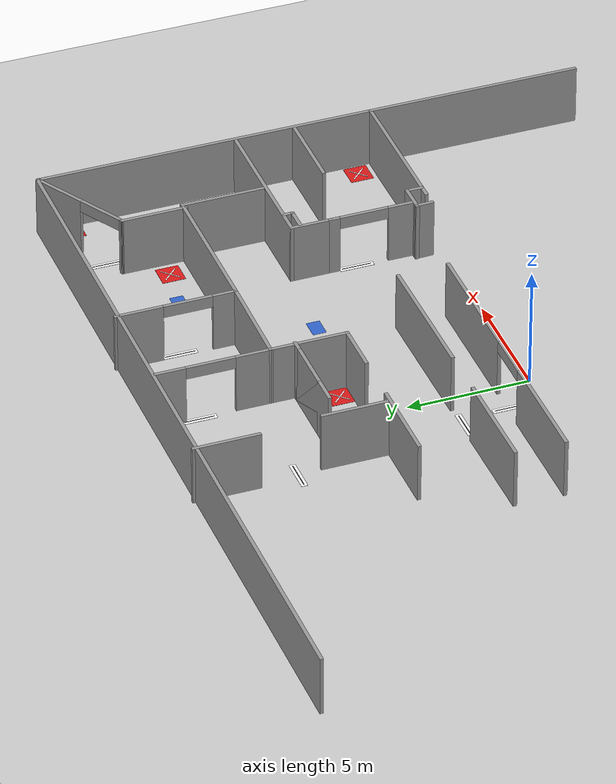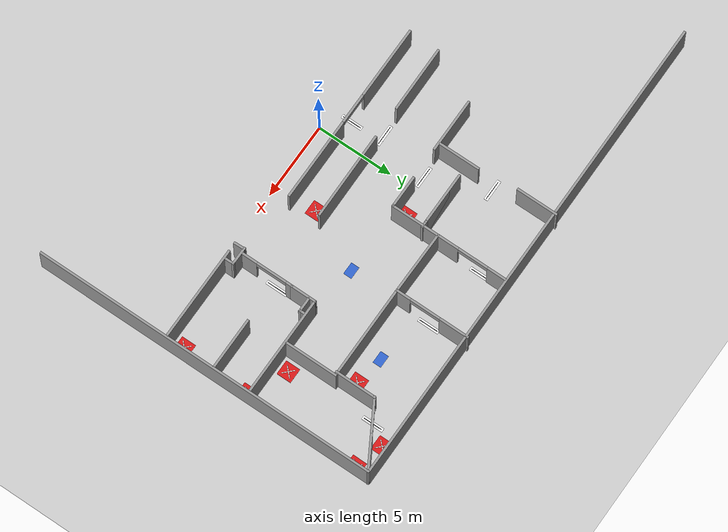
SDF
<sdf version="1.7">
 <world name="default">
  <model name="ground_plane">
   <static>1</static>
   <link name="link">
    <collision name="collision">
     <geometry><plane><normal>0 0 1</normal><size>100 100</size></plane></geometry>
     <surface><friction><ode><mu>100</mu><mu2>50</mu2></ode></friction></surface>
    </collision>
    <visual name="visual">
     <cast_shadows>0</cast_shadows>
     <geometry><plane><normal>0 0 1</normal><size>100 100</size></plane></geometry>
     <material>
      <script><uri>file://media/materials/scripts/gazebo.material</uri><name>Gazebo/Grey</name></script>
     </material>
    </visual>
   </link>
  </model>
  <model name="Untitled">
   <pose>-0.105598 -0.5029 0 0 -0 0</pose>
   <link name="Wall_0">
    <collision name="Wall_0_Collision">
     <geometry><box><size>32 0.15 2.5</size></box></geometry>
     <pose>0 0 1.25 0 -0 0</pose>
    </collision>
    <visual name="Wall_0_Visual">
     <pose>0 0 1.25 0 -0 0</pose>
     <geometry><box><size>32 0.15 2.5</size></box></geometry>
     <material>
      <script><uri>file://media/materials/scripts/gazebo.material</uri><name>Gazebo/Grey</name></script>
      <ambient>1 1 1 1</ambient>
     </material>
     <meta><layer>0</layer></meta>
    </visual>
    <pose>-0.015819 14.9519 0 0 -0 0</pose>
   </link>
   <link name="Wall_103">
    <collision name="Wall_103_Collision">
     <geometry><box><size>0.773696 0.15 2.5</size></box></geometry>
     <pose>0 0 1.25 0 -0 0</pose>
    </collision>
    <visual name="Wall_103_Visual">
     <pose>0 0 1.25 0 -0 0</pose>
     <geometry><box><size>0.773696 0.15 2.5</size></box></geometry>
     <material>
      <script><uri>file://media/materials/scripts/gazebo.material</uri><name>Gazebo/Grey</name></script>
      <ambient>1 1 1 1</ambient>
     </material>
     <meta><layer>0</layer></meta>
    </visual>
    <pose>9.2103 1.33527 0 0 -0 1.6081</pose>
   </link>
   <link name="Wall_104">
    <collision name="Wall_104_Collision">
     <geometry><box><size>1.25 0.15 2.5</size></box></geometry>
     <pose>0 0 1.25 0 -0 0</pose>
    </collision>
    <visual name="Wall_104_Visual">
     <pose>0 0 1.25 0 -0 0</pose>
     <geometry><box><size>1.25 0.15 2.5</size></box></geometry>
     <material>
      <script><uri>file://media/materials/scripts/gazebo.material</uri><name>Gazebo/Grey</name></script>
      <ambient>1 1 1 1</ambient>
     </material>
     <meta><layer>0</layer></meta>
    </visual>
    <pose>9.72541 1.6469 0 0 -0 0</pose>
   </link>
   <link name="Wall_107">
    <collision name="Wall_107_Collision">
     <geometry><box><size>0.75 0.15 2.5</size></box></geometry>
     <pose>0 0 1.25 0 -0 0</pose>
    </collision>
    <visual name="Wall_107_Visual">
     <pose>0 0 1.25 0 -0 0</pose>
     <geometry><box><size>0.75 0.15 2.5</size></box></geometry>
     <material>
      <script><uri>file://media/materials/scripts/gazebo.material</uri><name>Gazebo/Grey</name></script>
      <ambient>1 1 1 1</ambient>
     </material>
     <meta><layer>0</layer></meta>
    </visual>
    <pose>10.2754 1.3469 0 0 -0 -1.5708</pose>
   </link>
   <link name="Wall_109">
    <pose>9.47135 3.47041 0 0 -0 1.5708</pose>
    <visual name="Wall_109_Visual_0">
     <pose>-1.23605 0 1.25 0 -0 0</pose>
     <geometry><box><size>1.0279 0.15 2.5</size></box></geometry>
     <material>
      <script><uri>file://media/materials/scripts/gazebo.material</uri><name>Gazebo/Grey</name></script>
      <ambient>1 1 1 1</ambient>
     </material>
     <meta><layer>0</layer></meta>
    </visual>
    <collision name="Wall_109_Collision_0">
     <geometry><box><size>1.0279 0.15 2.5</size></box></geometry>
     <pose>-1.23605 0 1.25 0 -0 0</pose>
    </collision>
    <visual name="Wall_109_Visual_1">
     <pose>1.51395 0 1.25 0 -0 0</pose>
     <geometry><box><size>0.472105 0.15 2.5</size></box></geometry>
     <material>
      <script><uri>file://media/materials/scripts/gazebo.material</uri><name>Gazebo/Grey</name></script>
      <ambient>1 1 1 1</ambient>
     </material>
     <meta><layer>0</layer></meta>
    </visual>
    <collision name="Wall_109_Collision_1">
     <geometry><box><size>0.472105 0.15 2.5</size></box></geometry>
     <pose>1.51395 0 1.25 0 -0 0</pose>
    </collision>
    <visual name="Wall_109_Visual_2">
     <pose>0.277895 0 2.25 0 -0 0</pose>
     <geometry><box><size>2 0.15 0.5</size></box></geometry>
     <material>
      <script><uri>file://media/materials/scripts/gazebo.material</uri><name>Gazebo/Grey</name></script>
      <ambient>1 1 1 1</ambient>
     </material>
     <meta><layer>0</layer></meta>
    </visual>
    <collision name="Wall_109_Collision_2">
     <geometry><box><size>2 0.15 0.5</size></box></geometry>
     <pose>0.277895 0 2.25 0 -0 0</pose>
    </collision>
   </link>
   <link name="Wall_110">
    <collision name="Wall_110_Collision">
     <geometry><box><size>1.75 0.15 2.5</size></box></geometry>
     <pose>0 0 1.25 0 -0 0</pose>
    </collision>
    <visual name="Wall_110_Visual">
     <pose>0 0 1.25 0 -0 0</pose>
     <geometry><box><size>1.75 0.15 2.5</size></box></geometry>
     <material>
      <script><uri>file://media/materials/scripts/gazebo.material</uri><name>Gazebo/Grey</name></script>
      <ambient>1 1 1 1</ambient>
     </material>
     <meta><layer>0</layer></meta>
    </visual>
    <pose>9.47135 5.94541 0 0 -0 1.5708</pose>
   </link>
   <link name="Wall_111">
    <collision name="Wall_111_Collision">
     <geometry><box><size>6.5 0.15 2.5</size></box></geometry>
     <pose>0 0 1.25 0 -0 0</pose>
    </collision>
    <visual name="Wall_111_Visual">
     <pose>0 0 1.25 0 -0 0</pose>
     <geometry><box><size>6.5 0.15 2.5</size></box></geometry>
     <material>
      <script><uri>file://media/materials/scripts/gazebo.material</uri><name>Gazebo/Grey</name></script>
      <ambient>1 1 1 1</ambient>
     </material>
     <meta><layer>0</layer></meta>
    </visual>
    <pose>12.6463 6.74541 0 0 -0 0</pose>
   </link>
   <link name="Wall_113">
    <collision name="Wall_113_Collision">
     <geometry><box><size>3.5 0.15 2.5</size></box></geometry>
     <pose>0 0 1.25 0 -0 0</pose>
    </collision>
    <visual name="Wall_113_Visual">
     <pose>0 0 1.25 0 -0 0</pose>
     <geometry><box><size>3.5 0.15 2.5</size></box></geometry>
     <material>
      <script><uri>file://media/materials/scripts/gazebo.material</uri><name>Gazebo/Grey</name></script>
      <ambient>1 1 1 1</ambient>
     </material>
     <meta><layer>0</layer></meta>
    </visual>
    <pose>14.2653 4.27721 0 0 -0 3.14159</pose>
   </link>
   <link name="Wall_115">
    <collision name="Wall_115_Collision">
     <geometry><box><size>0.5 0.15 2.5</size></box></geometry>
     <pose>0 0 1.25 0 -0 0</pose>
    </collision>
    <visual name="Wall_115_Visual">
     <pose>0 0 1.25 0 -0 0</pose>
     <geometry><box><size>0.5 0.15 2.5</size></box></geometry>
     <material>
      <script><uri>file://media/materials/scripts/gazebo.material</uri><name>Gazebo/Grey</name></script>
      <ambient>1 1 1 1</ambient>
     </material>
     <meta><layer>0</layer></meta>
    </visual>
    <pose>10.4071 6.54333 0 0 -0 -1.5708</pose>
   </link>
   <link name="Wall_116">
    <collision name="Wall_116_Collision">
     <geometry><box><size>1 0.15 2.5</size></box></geometry>
     <pose>0 0 1.25 0 -0 0</pose>
    </collision>
    <visual name="Wall_116_Visual">
     <pose>0 0 1.25 0 -0 0</pose>
     <geometry><box><size>1 0.15 2.5</size></box></geometry>
     <material>
      <script><uri>file://media/materials/scripts/gazebo.material</uri><name>Gazebo/Grey</name></script>
      <ambient>1 1 1 1</ambient>
     </material>
     <meta><layer>0</layer></meta>
    </visual>
    <pose>9.98211 6.36833 0 0 -0 3.14159</pose>
   </link>
   <link name="Wall_118">
    <collision name="Wall_118_Collision">
     <geometry><box><size>3.5 0.15 2.5</size></box></geometry>
     <pose>0 0 1.25 0 -0 0</pose>
    </collision>
    <visual name="Wall_118_Visual">
     <pose>0 0 1.25 0 -0 0</pose>
     <geometry><box><size>3.5 0.15 2.5</size></box></geometry>
     <material>
      <script><uri>file://media/materials/scripts/gazebo.material</uri><name>Gazebo/Grey</name></script>
      <ambient>1 1 1 1</ambient>
     </material>
     <meta><layer>0</layer></meta>
    </visual>
    <pose>12.3892 8.52156 0 0 -0 1.5708</pose>
   </link>
   <link name="Wall_119">
    <collision name="Wall_119_Collision">
     <geometry><box><size>6.25 0.15 2.5</size></box></geometry>
     <pose>0 0 1.25 0 -0 0</pose>
    </collision>
    <visual name="Wall_119_Visual">
     <pose>0 0 1.25 0 -0 0</pose>
     <geometry><box><size>6.25 0.15 2.5</size></box></geometry>
     <material>
      <script><uri>file://media/materials/scripts/gazebo.material</uri><name>Gazebo/Grey</name></script>
      <ambient>1 1 1 1</ambient>
     </material>
     <meta><layer>0</layer></meta>
    </visual>
    <pose>9.33915 10.1966 0 0 -0 3.14159</pose>
   </link>
   <link name="Wall_121">
    <pose>6.28915 12.6216 0 0 -0 1.5708</pose>
    <visual name="Wall_121_Visual_0">
     <pose>-1.99093 0 1.25 0 -0 0</pose>
     <geometry><box><size>1.01815 0.15 2.5</size></box></geometry>
     <material>
      <script><uri>file://media/materials/scripts/gazebo.material</uri><name>Gazebo/Grey</name></script>
      <ambient>1 1 1 1</ambient>
     </material>
     <meta><layer>0</layer></meta>
    </visual>
    <collision name="Wall_121_Collision_0">
     <geometry><box><size>1.01815 0.15 2.5</size></box></geometry>
     <pose>-1.99093 0 1.25 0 -0 0</pose>
    </collision>
    <visual name="Wall_121_Visual_1">
     <pose>1.50907 0 1.25 0 -0 0</pose>
     <geometry><box><size>1.98185 0.15 2.5</size></box></geometry>
     <material>
      <script><uri>file://media/materials/scripts/gazebo.material</uri><name>Gazebo/Grey</name></script>
      <ambient>1 1 1 1</ambient>
     </material>
     <meta><layer>0</layer></meta>
    </visual>
    <collision name="Wall_121_Collision_1">
     <geometry><box><size>1.98185 0.15 2.5</size></box></geometry>
     <pose>1.50907 0 1.25 0 -0 0</pose>
    </collision>
    <visual name="Wall_121_Visual_2">
     <pose>-0.481853 0 2.25 0 -0 0</pose>
     <geometry><box><size>2 0.15 0.5</size></box></geometry>
     <material>
      <script><uri>file://media/materials/scripts/gazebo.material</uri><name>Gazebo/Grey</name></script>
      <ambient>1 1 1 1</ambient>
     </material>
     <meta><layer>0</layer></meta>
    </visual>
    <collision name="Wall_121_Collision_2">
     <geometry><box><size>2 0.15 0.5</size></box></geometry>
     <pose>-0.481853 0 2.25 0 -0 0</pose>
    </collision>
   </link>
   <link name="Wall_123">
    <pose>14.0857 13.8282 0 0 -0 -2.61799</pose>
    <visual name="Wall_123_Visual_0">
     <pose>-1.09346 0 1.25 0 -0 0</pose>
     <geometry><box><size>2.31309 0.15 2.5</size></box></geometry>
     <material>
      <script><uri>file://media/materials/scripts/gazebo.material</uri><name>Gazebo/Grey</name></script>
      <ambient>1 1 1 1</ambient>
     </material>
     <meta><layer>0</layer></meta>
    </visual>
    <collision name="Wall_123_Collision_0">
     <geometry><box><size>2.31309 0.15 2.5</size></box></geometry>
     <pose>-1.09346 0 1.25 0 -0 0</pose>
    </collision>
    <visual name="Wall_123_Visual_1">
     <pose>2.15654 0 1.25 0 -0 0</pose>
     <geometry><box><size>0.186911 0.15 2.5</size></box></geometry>
     <material>
      <script><uri>file://media/materials/scripts/gazebo.material</uri><name>Gazebo/Grey</name></script>
      <ambient>1 1 1 1</ambient>
     </material>
     <meta><layer>0</layer></meta>
    </visual>
    <collision name="Wall_123_Collision_1">
     <geometry><box><size>0.186911 0.15 2.5</size></box></geometry>
     <pose>2.15654 0 1.25 0 -0 0</pose>
    </collision>
    <visual name="Wall_123_Visual_2">
     <pose>1.06309 0 2.25 0 -0 0</pose>
     <geometry><box><size>2 0.15 0.5</size></box></geometry>
     <material>
      <script><uri>file://media/materials/scripts/gazebo.material</uri><name>Gazebo/Grey</name></script>
      <ambient>1 1 1 1</ambient>
     </material>
     <meta><layer>0</layer></meta>
    </visual>
    <collision name="Wall_123_Collision_2">
     <geometry><box><size>2 0.15 0.5</size></box></geometry>
     <pose>1.06309 0 2.25 0 -0 0</pose>
    </collision>
   </link>
   <link name="Wall_125">
    <collision name="Wall_125_Collision">
     <geometry><box><size>2.75 0.15 2.5</size></box></geometry>
     <pose>0 0 1.25 0 -0 0</pose>
    </collision>
    <visual name="Wall_125_Visual">
     <pose>0 0 1.25 0 -0 0</pose>
     <geometry><box><size>2.75 0.15 2.5</size></box></geometry>
     <material>
      <script><uri>file://media/materials/scripts/gazebo.material</uri><name>Gazebo/Grey</name></script>
      <ambient>1 1 1 1</ambient>
     </material>
     <meta><layer>0</layer></meta>
    </visual>
    <pose>12.2021 11.4407 0 0 -0 -1.5708</pose>
   </link>
   <link name="Wall_134">
    <collision name="Wall_134_Collision_0">
     <geometry><box><size>3.574498 0.15 2.5</size></box></geometry>
     <pose>-2.087751 0 1.25 0 -0 0</pose>
    </collision>
    <collision name="Wall_134_Collision_1">
     <geometry><box><size>2.175502 0.15 2.5</size></box></geometry>
     <pose>2.787249 0 1.25 0 -0 0</pose>
    </collision>
    <visual name="Wall_134_Visual_0">
     <pose>-2.087751 0 1.25 0 -0 0</pose>
     <geometry><box><size>3.574498 0.15 2.5</size></box></geometry>
     <material>
      <script><uri>file://media/materials/scripts/gazebo.material</uri><name>Gazebo/Grey</name></script>
      <ambient>1 1 1 1</ambient>
     </material>
     <meta><layer>0</layer></meta>
    </visual>
    <visual name="Wall_134_Visual_1">
     <pose>2.787249 0 1.25 0 -0 0</pose>
     <geometry><box><size>2.175502 0.15 2.5</size></box></geometry>
     <material>
      <script><uri>file://media/materials/scripts/gazebo.material</uri><name>Gazebo/Grey</name></script>
      <ambient>1 1 1 1</ambient>
     </material>
     <meta><layer>0</layer></meta>
    </visual>
    <pose>-1.5439 7.14462 0 0 -0 0</pose>
   </link>
   <link name="Wall_135">
    <collision name="Wall_135_Collision">
     <geometry><box><size>3.25 0.15 2.5</size></box></geometry>
     <pose>0 0 1.25 0 -0 0</pose>
    </collision>
    <visual name="Wall_135_Visual">
     <pose>0 0 1.25 0 -0 0</pose>
     <geometry><box><size>3.25 0.15 2.5</size></box></geometry>
     <material>
      <script><uri>file://media/materials/scripts/gazebo.material</uri><name>Gazebo/Grey</name></script>
      <ambient>1 1 1 1</ambient>
     </material>
     <meta><layer>0</layer></meta>
    </visual>
    <pose>2.2561 8.69462 0 0 -0 1.5708</pose>
   </link>
   <link name="Wall_136">
    <collision name="Wall_136_Collision">
     <geometry><box><size>4.18334 0.15 2.5</size></box></geometry>
     <pose>0 0 1.25 0 -0 0</pose>
    </collision>
    <visual name="Wall_136_Visual">
     <pose>0 0 1.25 0 -0 0</pose>
     <geometry><box><size>4.18334 0.15 2.5</size></box></geometry>
     <material>
      <script><uri>file://media/materials/scripts/gazebo.material</uri><name>Gazebo/Grey</name></script>
      <ambient>1 1 1 1</ambient>
     </material>
     <meta><layer>0</layer></meta>
    </visual>
    <pose>4.27263 10.2206 0 0 -0 -0.011916</pose>
   </link>
   <link name="Wall_141">
    <collision name="Wall_141_Collision">
     <geometry><box><size>2.75 0.15 2.5</size></box></geometry>
     <pose>0 0 1.25 0 -0 0</pose>
    </collision>
    <visual name="Wall_141_Visual">
     <pose>0 0 1.25 0 -0 0</pose>
     <geometry><box><size>2.75 0.15 2.5</size></box></geometry>
     <material>
      <script><uri>file://media/materials/scripts/gazebo.material</uri><name>Gazebo/Grey</name></script>
      <ambient>1 1 1 1</ambient>
     </material>
     <meta><layer>0</layer></meta>
    </visual>
    <pose>-2.3552 8.55347 0 0 -0 1.5708</pose>
   </link>
   <link name="Wall_143">
    <collision name="Wall_143_Collision">
     <geometry><box><size>2.75 0.15 2.5</size></box></geometry>
     <pose>0 0 1.25 0 -0 0</pose>
    </collision>
    <visual name="Wall_143_Visual">
     <pose>0 0 1.25 0 -0 0</pose>
     <geometry><box><size>2.75 0.15 2.5</size></box></geometry>
     <material>
      <script><uri>file://media/materials/scripts/gazebo.material</uri><name>Gazebo/Grey</name></script>
      <ambient>1 1 1 1</ambient>
     </material>
     <meta><layer>0</layer></meta>
    </visual>
    <pose>-2.61835 13.7628 0 0 -0 -1.5708</pose>
   </link>
   <link name="Wall_145">
    <pose>0.299408 9.22055 0 0 -0 0</pose>
    <visual name="Wall_145_Visual_0">
     <pose>0 0 1.25 0 -0 0</pose>
     <geometry><box><size>3.5 0.15 2.5</size></box></geometry>
     <material>
      <script><uri>file://media/materials/scripts/gazebo.material</uri><name>Gazebo/Grey</name></script>
      <ambient>1 1 1 1</ambient>
     </material>
     <meta><layer>0</layer></meta>
    </visual>
    <collision name="Wall_145_Collision_0">
     <geometry><box><size>3.5 0.15 2.5</size></box></geometry>
     <pose>0 0 1.25 0 -0 0</pose>
    </collision>
    <visual name="Wall_145_Visual_1">
     <pose>0.58502 0 1.25 0 -0 0</pose>
     <geometry><box><size>2.32996 0.15 2.5</size></box></geometry>
     <material>
      <script><uri>file://media/materials/scripts/gazebo.material</uri><name>Gazebo/Grey</name></script>
      <ambient>1 1 1 1</ambient>
     </material>
     <meta><layer>0</layer></meta>
    </visual>
    <collision name="Wall_145_Collision_1">
     <geometry><box><size>2.32996 0.15 2.5</size></box></geometry>
     <pose>0.58502 0 1.25 0 -0 0</pose>
    </collision>
   </link>
   <link name="Wall_146">
    <collision name="Wall_146_Collision">
     <geometry><box><size>0.5 0.15 2.5</size></box></geometry>
     <pose>0 0 1.25 0 -0 0</pose>
    </collision>
    <visual name="Wall_146_Visual">
     <pose>0 0 1.25 0 -0 0</pose>
     <geometry><box><size>0.5 0.15 2.5</size></box></geometry>
     <material>
      <script><uri>file://media/materials/scripts/gazebo.material</uri><name>Gazebo/Grey</name></script>
      <ambient>1 1 1 1</ambient>
     </material>
     <meta><layer>0</layer></meta>
    </visual>
    <pose>2.14941 9.22055 0 0 -0 0</pose>
   </link>
   <link name="Wall_148">
    <pose>2.2561 12.5446 0 0 -0 1.5708</pose>
    <visual name="Wall_148_Visual_0">
     <pose>-1.63102 0 1.25 0 -0 0</pose>
     <geometry><box><size>1.48795 0.15 2.5</size></box></geometry>
     <material>
      <script><uri>file://media/materials/scripts/gazebo.material</uri><name>Gazebo/Grey</name></script>
      <ambient>1 1 1 1</ambient>
     </material>
     <meta><layer>0</layer></meta>
    </visual>
    <collision name="Wall_148_Collision_0">
     <geometry><box><size>1.48795 0.15 2.5</size></box></geometry>
     <pose>-1.63102 0 1.25 0 -0 0</pose>
    </collision>
    <visual name="Wall_148_Visual_1">
     <pose>1.74398 0 1.25 0 -0 0</pose>
     <geometry><box><size>1.26205 0.15 2.5</size></box></geometry>
     <material>
      <script><uri>file://media/materials/scripts/gazebo.material</uri><name>Gazebo/Grey</name></script>
      <ambient>1 1 1 1</ambient>
     </material>
     <meta><layer>0</layer></meta>
    </visual>
    <collision name="Wall_148_Collision_1">
     <geometry><box><size>1.26205 0.15 2.5</size></box></geometry>
     <pose>1.74398 0 1.25 0 -0 0</pose>
    </collision>
    <visual name="Wall_148_Visual_2">
     <pose>0.112949 0 2.25 0 -0 0</pose>
     <geometry><box><size>2 0.15 0.5</size></box></geometry>
     <material>
      <script><uri>file://media/materials/scripts/gazebo.material</uri><name>Gazebo/Grey</name></script>
      <ambient>1 1 1 1</ambient>
     </material>
     <meta><layer>0</layer></meta>
    </visual>
    <collision name="Wall_148_Collision_2">
     <geometry><box><size>2 0.15 0.5</size></box></geometry>
     <pose>0.112949 0 2.25 0 -0 0</pose>
    </collision>
   </link>
   <link name="Wall_16">
    <collision name="Wall_16_Collision_0">
     <geometry><box><size>4.371509 0.15 2.5</size></box></geometry>
     <pose>-3.889346 0 1.25 0 -0 0</pose>
    </collision>
    <collision name="Wall_16_Collision_1">
     <geometry><box><size>5.778691 0.15 2.5</size></box></geometry>
     <pose>3.185755 0 1.25 0 -0 0</pose>
    </collision>
    <visual name="Wall_16_Visual_0">
     <pose>-3.889346 0 1.25 0 -0 0</pose>
     <geometry><box><size>4.371509 0.15 2.5</size></box></geometry>
     <material>
      <script><uri>file://media/materials/scripts/gazebo.material</uri><name>Gazebo/Grey</name></script>
      <ambient>1 1 1 1</ambient>
     </material>
     <meta><layer>0</layer></meta>
    </visual>
    <visual name="Wall_16_Visual_1">
     <pose>3.185755 0 1.25 0 -0 0</pose>
     <geometry><box><size>5.778691 0.15 2.5</size></box></geometry>
     <material>
      <script><uri>file://media/materials/scripts/gazebo.material</uri><name>Gazebo/Grey</name></script>
      <ambient>1 1 1 1</ambient>
     </material>
     <meta><layer>0</layer></meta>
    </visual>
    <pose>-0.940819 3.96326 0 0 -0 0.005896</pose>
   </link>
   <link name="Wall_22">
    <pose>-0.939938 1.92283 0 0 -0 0</pose>
    <visual name="Wall_22_Visual_0">
     <pose>-3.72488 0 1.25 0 -0 0</pose>
     <geometry><box><size>4.80023 0.15 2.5</size></box></geometry>
     <material>
      <script><uri>file://media/materials/scripts/gazebo.material</uri><name>Gazebo/Grey</name></script>
      <ambient>1 1 1 1</ambient>
     </material>
     <meta><layer>0</layer></meta>
    </visual>
    <collision name="Wall_22_Collision_0">
     <geometry><box><size>4.80023 0.15 2.5</size></box></geometry>
     <pose>-3.72488 0 1.25 0 -0 0</pose>
    </collision>
    <visual name="Wall_22_Visual_1">
     <pose>3.40012 0 1.25 0 -0 0</pose>
     <geometry><box><size>5.44977 0.15 2.5</size></box></geometry>
     <material>
      <script><uri>file://media/materials/scripts/gazebo.material</uri><name>Gazebo/Grey</name></script>
      <ambient>1 1 1 1</ambient>
     </material>
     <meta><layer>0</layer></meta>
    </visual>
    <collision name="Wall_22_Collision_1">
     <geometry><box><size>5.44977 0.15 2.5</size></box></geometry>
     <pose>3.40012 0 1.25 0 -0 0</pose>
    </collision>
    <visual name="Wall_22_Visual_2">
     <pose>-0.324766 0 2.25 0 -0 0</pose>
     <geometry><box><size>2 0.15 0.5</size></box></geometry>
     <material>
      <script><uri>file://media/materials/scripts/gazebo.material</uri><name>Gazebo/Grey</name></script>
      <ambient>1 1 1 1</ambient>
     </material>
     <meta><layer>0</layer></meta>
    </visual>
    <collision name="Wall_22_Collision_2">
     <geometry><box><size>2 0.15 0.5</size></box></geometry>
     <pose>-0.324766 0 2.25 0 -0 0</pose>
    </collision>
   </link>
   <link name="Wall_92">
    <collision name="Wall_92_Collision">
     <geometry><box><size>22.75 0.15 2.5</size></box></geometry>
     <pose>0 0 1.25 0 -0 0</pose>
    </collision>
    <visual name="Wall_92_Visual">
     <pose>0 0 1.25 0 -0 0</pose>
     <geometry><box><size>22.75 0.15 2.5</size></box></geometry>
     <material>
      <script><uri>file://media/materials/scripts/gazebo.material</uri><name>Gazebo/Grey</name></script>
      <ambient>1 1 1 1</ambient>
     </material>
     <meta><layer>0</layer></meta>
    </visual>
    <pose>15.9693 3.61574 0 0 -0 1.5708</pose>
   </link>
   <link name="Wall_97">
    <collision name="Wall_97_Collision">
     <geometry><box><size>6.25 0.15 2.5</size></box></geometry>
     <pose>0 0 1.25 0 -0 0</pose>
    </collision>
    <visual name="Wall_97_Visual">
     <pose>0 0 1.25 0 -0 0</pose>
     <geometry><box><size>6.25 0.15 2.5</size></box></geometry>
     <material>
      <script><uri>file://media/materials/scripts/gazebo.material</uri><name>Gazebo/Grey</name></script>
      <ambient>1 1 1 1</ambient>
     </material>
     <meta><layer>0</layer></meta>
    </visual>
    <pose>12.8719 1.02364 0 0 -0 0</pose>
   </link>
   <static>1</static>
  </model>
  <model name="semantic_marker_door_2">
   <static>true</static>
   <pose>-2.55 10.35 0 0 0 0.0000</pose>
   <link name="link">
    <visual name="door_patch">
     <pose>0 0 0.005 0 0 0</pose>
     <geometry><box><size>1.40 0.26 0.01</size></box></geometry>
     <material><ambient>0.96 0.96 0.96 1</ambient><diffuse>0.96 0.96 0.96 1</diffuse></material>
    </visual>
    <visual name="door_center_line">
     <pose>0 0 0.011 0 0 0</pose>
     <geometry><box><size>1.22 0.03 0.005</size></box></geometry>
     <material><ambient>0.15 0.15 0.15 1</ambient><diffuse>0.15 0.15 0.15 1</diffuse></material>
    </visual>
   </link>
  </model>
  <model name="semantic_marker_door_3">
   <static>true</static>
   <pose>2.05 12.65 0 0 0 1.5708</pose>
   <link name="link">
    <visual name="door_patch">
     <pose>0 0 0.005 0 0 0</pose>
     <geometry><box><size>1.40 0.26 0.01</size></box></geometry>
     <material><ambient>0.96 0.96 0.96 1</ambient><diffuse>0.96 0.96 0.96 1</diffuse></material>
    </visual>
    <visual name="door_center_line">
     <pose>0 0 0.011 0 0 0</pose>
     <geometry><box><size>1.22 0.03 0.005</size></box></geometry>
     <material><ambient>0.15 0.15 0.15 1</ambient><diffuse>0.15 0.15 0.15 1</diffuse></material>
    </visual>
   </link>
  </model>
  <model name="semantic_marker_door_4">
   <static>true</static>
   <pose>6.25 11.95 0 0 0 1.5708</pose>
   <link name="link">
    <visual name="door_patch">
     <pose>0 0 0.005 0 0 0</pose>
     <geometry><box><size>1.40 0.26 0.01</size></box></geometry>
     <material><ambient>0.96 0.96 0.96 1</ambient><diffuse>0.96 0.96 0.96 1</diffuse></material>
    </visual>
    <visual name="door_center_line">
     <pose>0 0 0.011 0 0 0</pose>
     <geometry><box><size>1.22 0.03 0.005</size></box></geometry>
     <material><ambient>0.15 0.15 0.15 1</ambient><diffuse>0.15 0.15 0.15 1</diffuse></material>
    </visual>
   </link>
  </model>
  <model name="semantic_marker_door_5">
   <static>true</static>
   <pose>12.85 12.65 0 0 0 1.5708</pose>
   <link name="link">
    <visual name="door_patch">
     <pose>0 0 0.005 0 0 0</pose>
     <geometry><box><size>1.40 0.26 0.01</size></box></geometry>
     <material><ambient>0.96 0.96 0.96 1</ambient><diffuse>0.96 0.96 0.96 1</diffuse></material>
    </visual>
    <visual name="door_center_line">
     <pose>0 0 0.011 0 0 0</pose>
     <geometry><box><size>1.22 0.03 0.005</size></box></geometry>
     <material><ambient>0.15 0.15 0.15 1</ambient><diffuse>0.15 0.15 0.15 1</diffuse></material>
    </visual>
   </link>
  </model>
  <model name="semantic_marker_door_11">
   <static>true</static>
   <pose>-1.35 1.35 0 0 0 1.5708</pose>
   <link name="link">
    <visual name="door_patch">
     <pose>0 0 0.005 0 0 0</pose>
     <geometry><box><size>1.40 0.26 0.01</size></box></geometry>
     <material><ambient>0.96 0.96 0.96 1</ambient><diffuse>0.96 0.96 0.96 1</diffuse></material>
    </visual>
    <visual name="door_center_line">
     <pose>0 0 0.011 0 0 0</pose>
     <geometry><box><size>1.22 0.03 0.005</size></box></geometry>
     <material><ambient>0.15 0.15 0.15 1</ambient><diffuse>0.15 0.15 0.15 1</diffuse></material>
    </visual>
   </link>
  </model>
  <model name="semantic_marker_door_23">
   <static>true</static>
   <pose>9.35 3.55 0 0 0 1.5708</pose>
   <link name="link">
    <visual name="door_patch">
     <pose>0 0 0.005 0 0 0</pose>
     <geometry><box><size>1.40 0.26 0.01</size></box></geometry>
     <material><ambient>0.96 0.96 0.96 1</ambient><diffuse>0.96 0.96 0.96 1</diffuse></material>
    </visual>
    <visual name="door_center_line">
     <pose>0 0 0.011 0 0 0</pose>
     <geometry><box><size>1.22 0.03 0.005</size></box></geometry>
     <material><ambient>0.15 0.15 0.15 1</ambient><diffuse>0.15 0.15 0.15 1</diffuse></material>
    </visual>
   </link>
  </model>
  <model name="semantic_marker_door_26">
   <static>true</static>
   <pose>-1.75 3.35 0 0 0 0.0059</pose>
   <link name="link">
    <visual name="door_patch">
     <pose>0 0 0.005 0 0 0</pose>
     <geometry><box><size>1.40 0.26 0.01</size></box></geometry>
     <material><ambient>0.96 0.96 0.96 1</ambient><diffuse>0.96 0.96 0.96 1</diffuse></material>
    </visual>
    <visual name="door_center_line">
     <pose>0 0 0.011 0 0 0</pose>
     <geometry><box><size>1.22 0.03 0.005</size></box></geometry>
     <material><ambient>0.15 0.15 0.15 1</ambient><diffuse>0.15 0.15 0.15 1</diffuse></material>
    </visual>
   </link>
  </model>
  <model name="semantic_marker_door_27">
   <static>true</static>
   <pose>-0.95 6.65 0 0 0 0.0000</pose>
   <link name="link">
    <visual name="door_patch">
     <pose>0 0 0.005 0 0 0</pose>
     <geometry><box><size>1.40 0.26 0.01</size></box></geometry>
     <material><ambient>0.96 0.96 0.96 1</ambient><diffuse>0.96 0.96 0.96 1</diffuse></material>
    </visual>
    <visual name="door_center_line">
     <pose>0 0 0.011 0 0 0</pose>
     <geometry><box><size>1.22 0.03 0.005</size></box></geometry>
     <material><ambient>0.15 0.15 0.15 1</ambient><diffuse>0.15 0.15 0.15 1</diffuse></material>
    </visual>
   </link>
  </model>
  <model name="semantic_marker_dead_end_12">
   <static>true</static>
   <pose>15.25 1.25 0 0 0 0.0000</pose>
   <link name="link">
    <visual name="dead_end_patch">
     <pose>0 0 0.005 0 0 0</pose>
     <geometry><box><size>0.95 0.95 0.01</size></box></geometry>
     <material><ambient>0.85 0.10 0.10 1</ambient><diffuse>0.85 0.10 0.10 1</diffuse></material>
    </visual>
    <visual name="cross_bar_a">
     <pose>0 0 0.011 0 0 0.78</pose>
     <geometry><box><size>0.83 0.05 0.005</size></box></geometry>
     <material><ambient>0.98 0.98 0.98 1</ambient><diffuse>0.98 0.98 0.98 1</diffuse></material>
    </visual>
    <visual name="cross_bar_b">
     <pose>0 0 0.011 0 0 -0.78</pose>
     <geometry><box><size>0.83 0.05 0.005</size></box></geometry>
     <material><ambient>0.98 0.98 0.98 1</ambient><diffuse>0.98 0.98 0.98 1</diffuse></material>
    </visual>
   </link>
  </model>
  <model name="semantic_marker_dead_end_13">
   <static>true</static>
   <pose>15.45 5.75 0 0 0 0.0000</pose>
   <link name="link">
    <visual name="dead_end_patch">
     <pose>0 0 0.005 0 0 0</pose>
     <geometry><box><size>0.95 0.95 0.01</size></box></geometry>
     <material><ambient>0.85 0.10 0.10 1</ambient><diffuse>0.85 0.10 0.10 1</diffuse></material>
    </visual>
    <visual name="cross_bar_a">
     <pose>0 0 0.011 0 0 0.78</pose>
     <geometry><box><size>0.83 0.05 0.005</size></box></geometry>
     <material><ambient>0.98 0.98 0.98 1</ambient><diffuse>0.98 0.98 0.98 1</diffuse></material>
    </visual>
    <visual name="cross_bar_b">
     <pose>0 0 0.011 0 0 -0.78</pose>
     <geometry><box><size>0.83 0.05 0.005</size></box></geometry>
     <material><ambient>0.98 0.98 0.98 1</ambient><diffuse>0.98 0.98 0.98 1</diffuse></material>
    </visual>
   </link>
  </model>
  <model name="semantic_marker_dead_end_14">
   <static>true</static>
   <pose>13.05 6.95 0 0 0 0.0000</pose>
   <link name="link">
    <visual name="dead_end_patch">
     <pose>0 0 0.005 0 0 0</pose>
     <geometry><box><size>0.95 0.95 0.01</size></box></geometry>
     <material><ambient>0.85 0.10 0.10 1</ambient><diffuse>0.85 0.10 0.10 1</diffuse></material>
    </visual>
    <visual name="cross_bar_a">
     <pose>0 0 0.011 0 0 0.78</pose>
     <geometry><box><size>0.83 0.05 0.005</size></box></geometry>
     <material><ambient>0.98 0.98 0.98 1</ambient><diffuse>0.98 0.98 0.98 1</diffuse></material>
    </visual>
    <visual name="cross_bar_b">
     <pose>0 0 0.011 0 0 -0.78</pose>
     <geometry><box><size>0.83 0.05 0.005</size></box></geometry>
     <material><ambient>0.98 0.98 0.98 1</ambient><diffuse>0.98 0.98 0.98 1</diffuse></material>
    </visual>
   </link>
  </model>
  <model name="semantic_marker_dead_end_15">
   <static>true</static>
   <pose>15.45 13.25 0 0 0 0.0000</pose>
   <link name="link">
    <visual name="dead_end_patch">
     <pose>0 0 0.005 0 0 0</pose>
     <geometry><box><size>0.95 0.95 0.01</size></box></geometry>
     <material><ambient>0.85 0.10 0.10 1</ambient><diffuse>0.85 0.10 0.10 1</diffuse></material>
    </visual>
    <visual name="cross_bar_a">
     <pose>0 0 0.011 0 0 0.78</pose>
     <geometry><box><size>0.83 0.05 0.005</size></box></geometry>
     <material><ambient>0.98 0.98 0.98 1</ambient><diffuse>0.98 0.98 0.98 1</diffuse></material>
    </visual>
    <visual name="cross_bar_b">
     <pose>0 0 0.011 0 0 -0.78</pose>
     <geometry><box><size>0.83 0.05 0.005</size></box></geometry>
     <material><ambient>0.98 0.98 0.98 1</ambient><diffuse>0.98 0.98 0.98 1</diffuse></material>
    </visual>
   </link>
  </model>
  <model name="semantic_marker_dead_end_16">
   <static>true</static>
   <pose>13.65 13.85 0 0 0 0.0000</pose>
   <link name="link">
    <visual name="dead_end_patch">
     <pose>0 0 0.005 0 0 0</pose>
     <geometry><box><size>0.95 0.95 0.01</size></box></geometry>
     <material><ambient>0.85 0.10 0.10 1</ambient><diffuse>0.85 0.10 0.10 1</diffuse></material>
    </visual>
    <visual name="cross_bar_a">
     <pose>0 0 0.011 0 0 0.78</pose>
     <geometry><box><size>0.83 0.05 0.005</size></box></geometry>
     <material><ambient>0.98 0.98 0.98 1</ambient><diffuse>0.98 0.98 0.98 1</diffuse></material>
    </visual>
    <visual name="cross_bar_b">
     <pose>0 0 0.011 0 0 -0.78</pose>
     <geometry><box><size>0.83 0.05 0.005</size></box></geometry>
     <material><ambient>0.98 0.98 0.98 1</ambient><diffuse>0.98 0.98 0.98 1</diffuse></material>
    </visual>
   </link>
  </model>
  <model name="semantic_marker_dead_end_17">
   <static>true</static>
   <pose>11.35 10.55 0 0 0 0.0000</pose>
   <link name="link">
    <visual name="dead_end_patch">
     <pose>0 0 0.005 0 0 0</pose>
     <geometry><box><size>0.95 0.95 0.01</size></box></geometry>
     <material><ambient>0.85 0.10 0.10 1</ambient><diffuse>0.85 0.10 0.10 1</diffuse></material>
    </visual>
    <visual name="cross_bar_a">
     <pose>0 0 0.011 0 0 0.78</pose>
     <geometry><box><size>0.83 0.05 0.005</size></box></geometry>
     <material><ambient>0.98 0.98 0.98 1</ambient><diffuse>0.98 0.98 0.98 1</diffuse></material>
    </visual>
    <visual name="cross_bar_b">
     <pose>0 0 0.011 0 0 -0.78</pose>
     <geometry><box><size>0.83 0.05 0.005</size></box></geometry>
     <material><ambient>0.98 0.98 0.98 1</ambient><diffuse>0.98 0.98 0.98 1</diffuse></material>
    </visual>
   </link>
  </model>
  <model name="semantic_marker_dead_end_18">
   <static>true</static>
   <pose>1.55 7.15 0 0 0 0.0000</pose>
   <link name="link">
    <visual name="dead_end_patch">
     <pose>0 0 0.005 0 0 0</pose>
     <geometry><box><size>0.95 0.95 0.01</size></box></geometry>
     <material><ambient>0.85 0.10 0.10 1</ambient><diffuse>0.85 0.10 0.10 1</diffuse></material>
    </visual>
    <visual name="cross_bar_a">
     <pose>0 0 0.011 0 0 0.78</pose>
     <geometry><box><size>0.83 0.05 0.005</size></box></geometry>
     <material><ambient>0.98 0.98 0.98 1</ambient><diffuse>0.98 0.98 0.98 1</diffuse></material>
    </visual>
    <visual name="cross_bar_b">
     <pose>0 0 0.011 0 0 -0.78</pose>
     <geometry><box><size>0.83 0.05 0.005</size></box></geometry>
     <material><ambient>0.98 0.98 0.98 1</ambient><diffuse>0.98 0.98 0.98 1</diffuse></material>
    </visual>
   </link>
  </model>
  <model name="semantic_marker_dead_end_22">
   <static>true</static>
   <pose>4.25 2.75 0 0 0 0.0000</pose>
   <link name="link">
    <visual name="dead_end_patch">
     <pose>0 0 0.005 0 0 0</pose>
     <geometry><box><size>0.95 0.95 0.01</size></box></geometry>
     <material><ambient>0.85 0.10 0.10 1</ambient><diffuse>0.85 0.10 0.10 1</diffuse></material>
    </visual>
    <visual name="cross_bar_a">
     <pose>0 0 0.011 0 0 0.78</pose>
     <geometry><box><size>0.83 0.05 0.005</size></box></geometry>
     <material><ambient>0.98 0.98 0.98 1</ambient><diffuse>0.98 0.98 0.98 1</diffuse></material>
    </visual>
    <visual name="cross_bar_b">
     <pose>0 0 0.011 0 0 -0.78</pose>
     <geometry><box><size>0.83 0.05 0.005</size></box></geometry>
     <material><ambient>0.98 0.98 0.98 1</ambient><diffuse>0.98 0.98 0.98 1</diffuse></material>
    </visual>
   </link>
  </model>
  <model name="semantic_marker_water_0">
   <static>true</static>
   <pose>6.05 6.45 0 0 0 0.0000</pose>
   <link name="link">
    <visual name="water_patch">
     <pose>0 0 0.005 0 0 0</pose>
     <geometry><box><size>0.80 0.55 0.01</size></box></geometry>
     <material>
      <ambient>0.10 0.35 0.85 0.82</ambient>
      <diffuse>0.10 0.35 0.85 0.82</diffuse>
      <specular>0.95 0.95 0.95 1</specular>
     </material>
    </visual>
   </link>
  </model>
  <model name="semantic_marker_water_4">
   <static>true</static>
   <pose>9.45 10.85 0 0 0 0.0000</pose>
   <link name="link">
    <visual name="water_patch">
     <pose>0 0 0.005 0 0 0</pose>
     <geometry><box><size>0.80 0.55 0.01</size></box></geometry>
     <material>
      <ambient>0.10 0.35 0.85 0.82</ambient>
      <diffuse>0.10 0.35 0.85 0.82</diffuse>
      <specular>0.95 0.95 0.95 1</specular>
     </material>
    </visual>
   </link>
  </model>
 </world>
</sdf>
